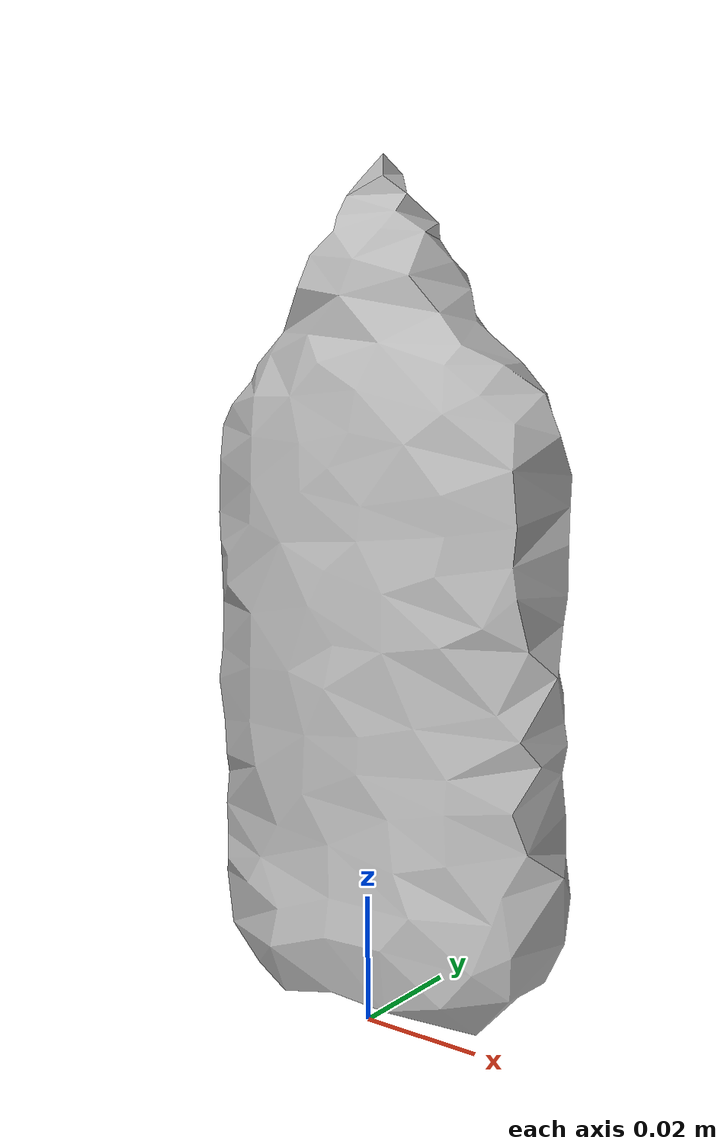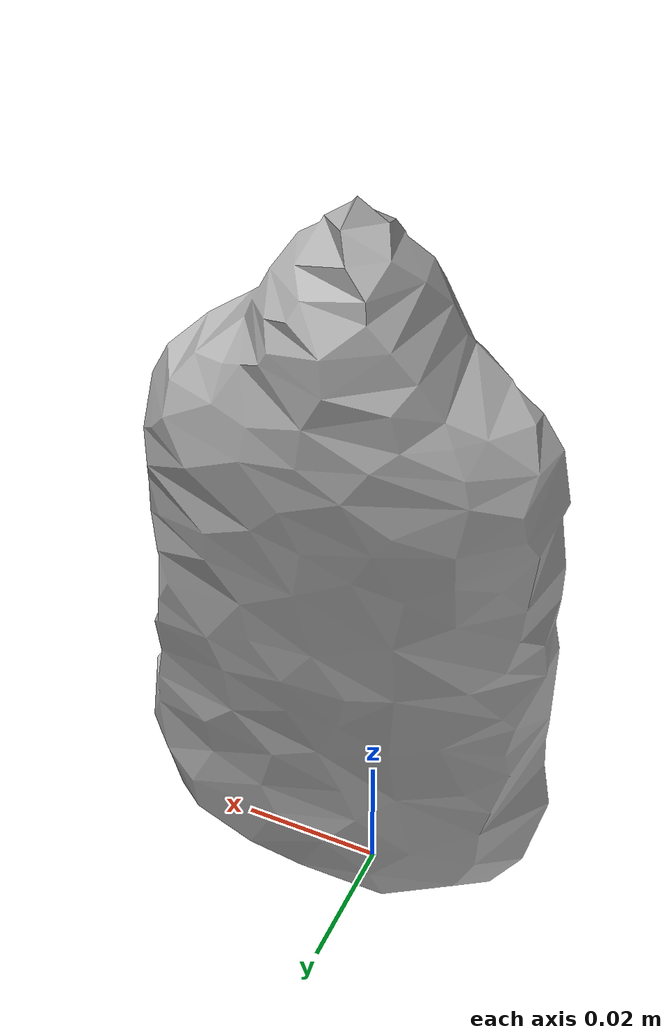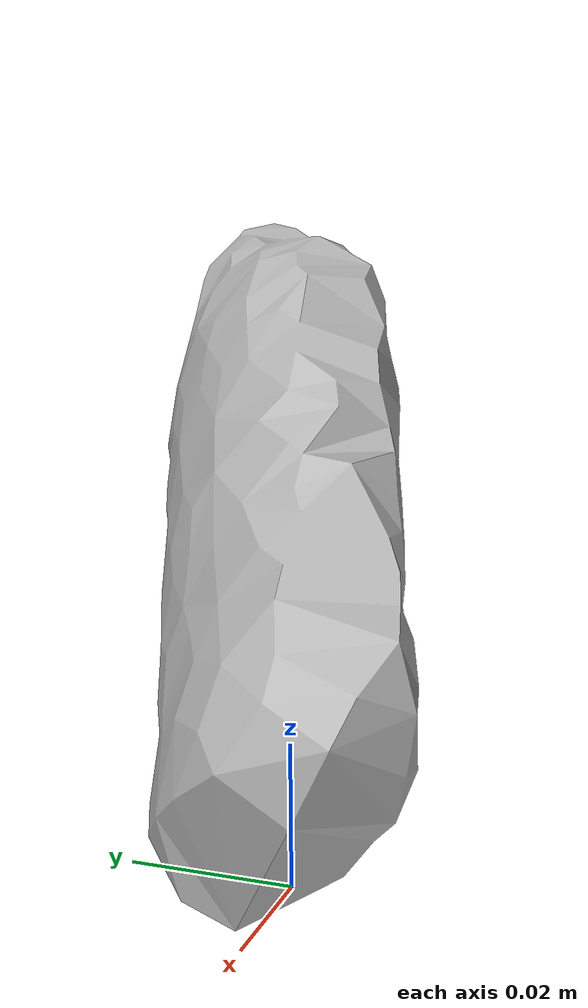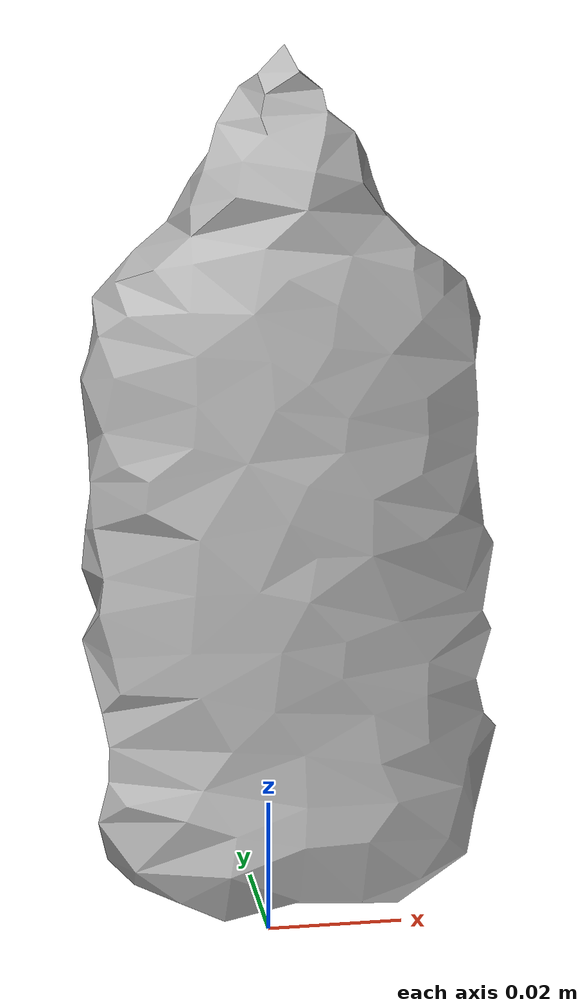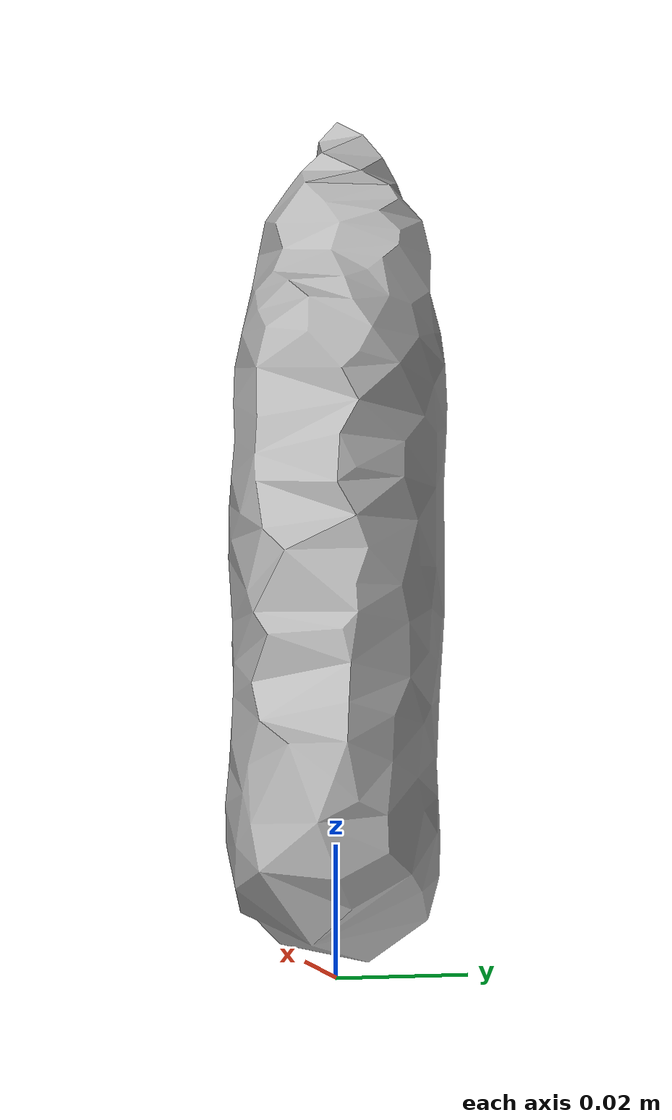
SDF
<?xml version="1.0" ?>
<sdf version="1.4">
  <model name="glue">
    <link name="glue_link">
      <inertial>
        <pose>0 0 0 0 0 0</pose>
        <mass>0.08</mass>
      </inertial>

      <visual name="glue_visual">
        <pose>0 0 0 0 0 0</pose>
        <material>
          <script>
            <uri>model://glue/materials/scripts</uri>
            <uri>model://glue/materials/textures</uri>
            <name>glue</name>
          </script>
        </material>
        <geometry>
          <mesh>
            <uri>model://glue/meshes/glue_aligned.dae</uri>
          </mesh>
        </geometry>
      </visual>

      <collision name="glue_collision">
        <pose>0 0 0.067 0 0 0</pose>
        <geometry>
          <box>
            <size>0.054 0.032 0.133</size>
          </box>
        </geometry>
      </collision>

    </link>
  </model>
</sdf>
